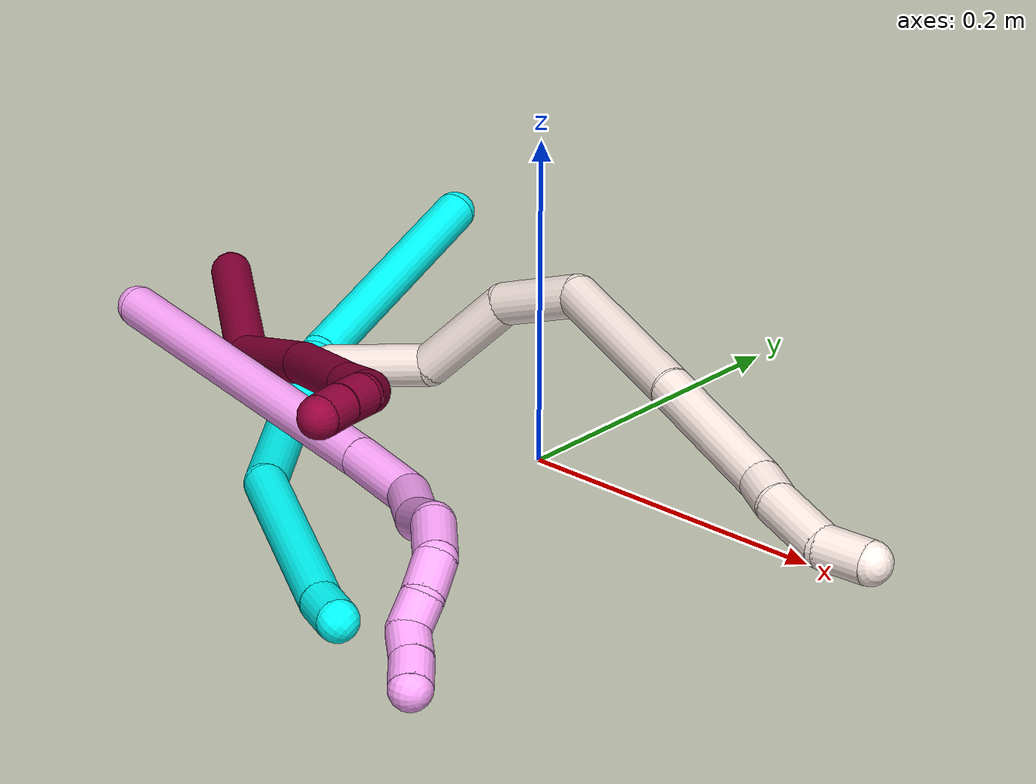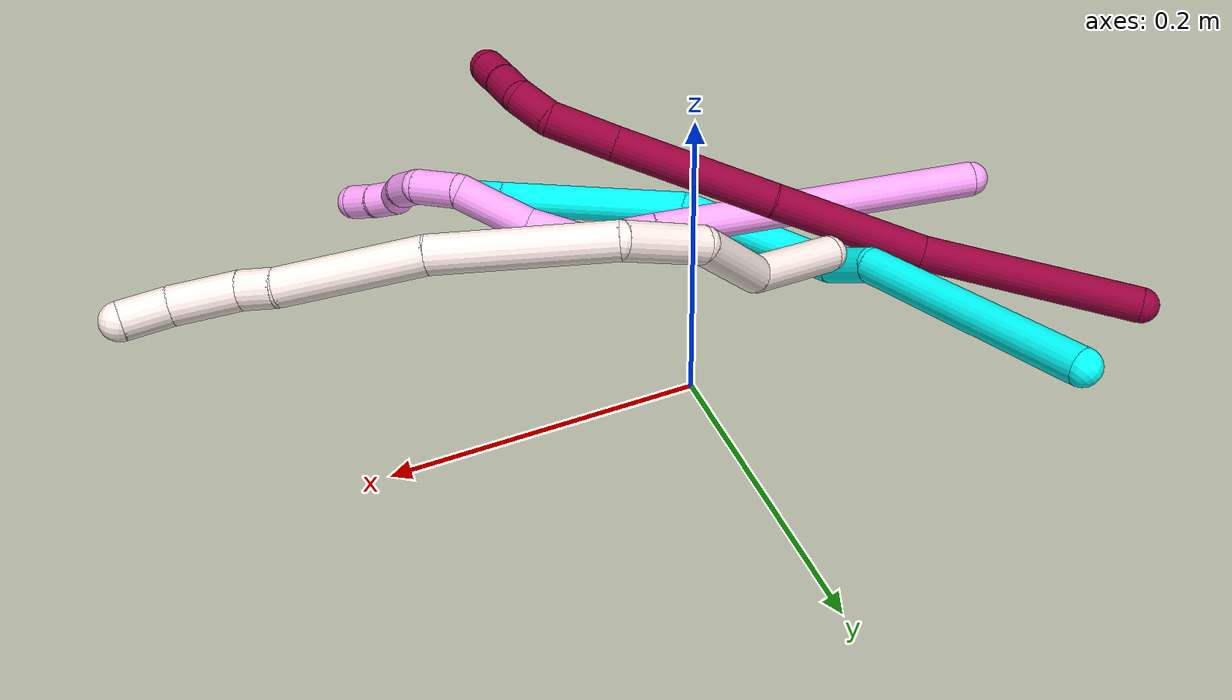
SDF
<sdf version="1.7">
 <world name="default">
  <model name="3">
   <static>0</static>
   <link name="3">
    <collision name="collision-cylinder-e_1_1_4">
     <pose>0.055954 -0.066906 0.006446 1.47476 0.694218 0.634933</pose>
     <geometry><cylinder><radius>0.0125</radius><length>0.174916</length></cylinder></geometry>
     <surface>
      <friction><ode><mu>1.16</mu><mu2>1.16</mu2><slip1>0</slip1><slip2>0</slip2></ode></friction>
      <contact><ode><kp>1e+06</kp><kd>1</kd><max_vel>0</max_vel><min_depth>0.001</min_depth></ode></contact>
     </surface>
    </collision>
    <visual name="visual-cylinder-e_1_1_4">
     <pose>0.055954 -0.066906 0.006446 1.47476 0.694218 0.634933</pose>
     <geometry><cylinder><radius>0.0125</radius><length>0.174916</length></cylinder></geometry>
     <material><ambient>0.003922 1 0.996078 1</ambient></material>
    </visual>
    <collision name="collision-cylinder-e_2_4_5">
     <pose>0.128497 -0.144447 0.019361 1.02422 0.927044 0.547827</pose>
     <geometry><cylinder><radius>0.0125</radius><length>0.041479</length></cylinder></geometry>
     <surface>
      <friction><ode><mu>1.16</mu><mu2>1.16</mu2><slip1>0</slip1><slip2>0</slip2></ode></friction>
      <contact><ode><kp>1e+06</kp><kd>1</kd><max_vel>0</max_vel><min_depth>0.001</min_depth></ode></contact>
     </surface>
    </collision>
    <visual name="visual-cylinder-e_2_4_5">
     <pose>0.128497 -0.144447 0.019361 1.02422 0.927044 0.547827</pose>
     <geometry><cylinder><radius>0.0125</radius><length>0.041479</length></cylinder></geometry>
     <material><ambient>0.003922 1 0.996078 1</ambient></material>
    </visual>
    <collision name="collision-cylinder-e_3_5_6">
     <pose>0.161517 -0.210134 0.040028 1.31843 0.281343 0.218573</pose>
     <geometry><cylinder><radius>0.0125</radius><length>0.11836</length></cylinder></geometry>
     <surface>
      <friction><ode><mu>1.16</mu><mu2>1.16</mu2><slip1>0</slip1><slip2>0</slip2></ode></friction>
      <contact><ode><kp>1e+06</kp><kd>1</kd><max_vel>0</max_vel><min_depth>0.001</min_depth></ode></contact>
     </surface>
    </collision>
    <visual name="visual-cylinder-e_3_5_6">
     <pose>0.161517 -0.210134 0.040028 1.31843 0.281343 0.218573</pose>
     <geometry><cylinder><radius>0.0125</radius><length>0.11836</length></cylinder></geometry>
     <material><ambient>0.003922 1 0.996078 1</ambient></material>
    </visual>
    <collision name="collision-cylinder-e_4_6_7">
     <pose>0.185217 -0.322848 0.092875 0.980281 0.104331 0.055704</pose>
     <geometry><cylinder><radius>0.0125</radius><length>0.139594</length></cylinder></geometry>
     <surface>
      <friction><ode><mu>1.16</mu><mu2>1.16</mu2><slip1>0</slip1><slip2>0</slip2></ode></friction>
      <contact><ode><kp>1e+06</kp><kd>1</kd><max_vel>0</max_vel><min_depth>0.001</min_depth></ode></contact>
     </surface>
    </collision>
    <visual name="visual-cylinder-e_4_6_7">
     <pose>0.185217 -0.322848 0.092875 0.980281 0.104331 0.055704</pose>
     <geometry><cylinder><radius>0.0125</radius><length>0.139594</length></cylinder></geometry>
     <material><ambient>0.003922 1 0.996078 1</ambient></material>
    </visual>
    <collision name="collision-cylinder-e_5_7_2">
     <pose>0.191972 -0.391012 0.13887 0.960545 -0.040082 -0.020883</pose>
     <geometry><cylinder><radius>0.0125</radius><length>0.02565</length></cylinder></geometry>
     <surface>
      <friction><ode><mu>1.16</mu><mu2>1.16</mu2><slip1>0</slip1><slip2>0</slip2></ode></friction>
      <contact><ode><kp>1e+06</kp><kd>1</kd><max_vel>0</max_vel><min_depth>0.001</min_depth></ode></contact>
     </surface>
    </collision>
    <visual name="visual-cylinder-e_5_7_2">
     <pose>0.191972 -0.391012 0.13887 0.960545 -0.040082 -0.020883</pose>
     <geometry><cylinder><radius>0.0125</radius><length>0.02565</length></cylinder></geometry>
     <material><ambient>0.003922 1 0.996078 1</ambient></material>
    </visual>
    <collision name="collision-sphere-2">
     <pose>0.191458 -0.401514 0.146213 0 -0 0</pose>
     <geometry><sphere><radius>0.0125</radius></sphere></geometry>
     <surface>
      <friction><ode><mu>1.16</mu><mu2>1.16</mu2><slip1>0</slip1><slip2>0</slip2></ode></friction>
      <contact><ode><kp>1e+06</kp><kd>1</kd><max_vel>0</max_vel><min_depth>0.001</min_depth></ode></contact>
     </surface>
    </collision>
    <visual name="visual-sphere-2">
     <pose>0.191458 -0.401514 0.146213 0 -0 0</pose>
     <geometry><sphere><radius>0.0125</radius></sphere></geometry>
     <material><ambient>0.003922 1 0.996078 1</ambient></material>
    </visual>
    <collision name="collision-sphere-7">
     <pose>0.192486 -0.38051 0.131526 0 -0 0</pose>
     <geometry><sphere><radius>0.0125</radius></sphere></geometry>
     <surface>
      <friction><ode><mu>1.16</mu><mu2>1.16</mu2><slip1>0</slip1><slip2>0</slip2></ode></friction>
      <contact><ode><kp>1e+06</kp><kd>1</kd><max_vel>0</max_vel><min_depth>0.001</min_depth></ode></contact>
     </surface>
    </collision>
    <visual name="visual-sphere-7">
     <pose>0.192486 -0.38051 0.131526 0 -0 0</pose>
     <geometry><sphere><radius>0.0125</radius></sphere></geometry>
     <material><ambient>0.003922 1 0.996078 1</ambient></material>
    </visual>
    <collision name="collision-sphere-6">
     <pose>0.177948 -0.265186 0.054224 0 -0 0</pose>
     <geometry><sphere><radius>0.0125</radius></sphere></geometry>
     <surface>
      <friction><ode><mu>1.16</mu><mu2>1.16</mu2><slip1>0</slip1><slip2>0</slip2></ode></friction>
      <contact><ode><kp>1e+06</kp><kd>1</kd><max_vel>0</max_vel><min_depth>0.001</min_depth></ode></contact>
     </surface>
    </collision>
    <visual name="visual-sphere-6">
     <pose>0.177948 -0.265186 0.054224 0 -0 0</pose>
     <geometry><sphere><radius>0.0125</radius></sphere></geometry>
     <material><ambient>0.003922 1 0.996078 1</ambient></material>
    </visual>
    <collision name="collision-sphere-5">
     <pose>0.145086 -0.155082 0.025831 0 -0 0</pose>
     <geometry><sphere><radius>0.0125</radius></sphere></geometry>
     <surface>
      <friction><ode><mu>1.16</mu><mu2>1.16</mu2><slip1>0</slip1><slip2>0</slip2></ode></friction>
      <contact><ode><kp>1e+06</kp><kd>1</kd><max_vel>0</max_vel><min_depth>0.001</min_depth></ode></contact>
     </surface>
    </collision>
    <visual name="visual-sphere-5">
     <pose>0.145086 -0.155082 0.025831 0 -0 0</pose>
     <geometry><sphere><radius>0.0125</radius></sphere></geometry>
     <material><ambient>0.003922 1 0.996078 1</ambient></material>
    </visual>
    <collision name="collision-sphere-1">
     <geometry><sphere><radius>0.0125</radius></sphere></geometry>
     <surface>
      <friction><ode><mu>1.16</mu><mu2>1.16</mu2><slip1>0</slip1><slip2>0</slip2></ode></friction>
      <contact><ode><kp>1e+06</kp><kd>1</kd><max_vel>0</max_vel><min_depth>0.001</min_depth></ode></contact>
     </surface>
    </collision>
    <visual name="visual-sphere-1">
     <geometry><sphere><radius>0.0125</radius></sphere></geometry>
     <material><ambient>0.003922 1 0.996078 1</ambient></material>
    </visual>
    <collision name="collision-sphere-4">
     <pose>0.111909 -0.133813 0.012891 0 -0 0</pose>
     <geometry><sphere><radius>0.0125</radius></sphere></geometry>
     <surface>
      <friction><ode><mu>1.16</mu><mu2>1.16</mu2><slip1>0</slip1><slip2>0</slip2></ode></friction>
      <contact><ode><kp>1e+06</kp><kd>1</kd><max_vel>0</max_vel><min_depth>0.001</min_depth></ode></contact>
     </surface>
    </collision>
    <visual name="visual-sphere-4">
     <pose>0.111909 -0.133813 0.012891 0 -0 0</pose>
     <geometry><sphere><radius>0.0125</radius></sphere></geometry>
     <material><ambient>0.003922 1 0.996078 1</ambient></material>
    </visual>
    <inertial>
     <pose>0.130028 -0.195327 0.04639 0 -0 0</pose>
     <mass>0.5</mass>
     <inertia>
      <ixx>0.000917</ixx>
      <ixy>0</ixy>
      <ixz>0</ixz>
      <iyy>0.000607</iyy>
      <iyz>0</iyz>
      <izz>0.000329</izz>
     </inertia>
    </inertial>
   </link>
   <pose>-0.192949 0.137048 0.06048 -2.51482 0.758511 -2.04378</pose>
  </model>
  <model name="4">
   <static>0</static>
   <link name="4">
    <collision name="collision-cylinder-e_1_1_4">
     <pose>0.020136 -0.003711 0.115043 0.032243 0.173184 0.002799</pose>
     <geometry><cylinder><radius>0.0125</radius><length>0.233702</length></cylinder></geometry>
     <surface>
      <friction><ode><mu>1.16</mu><mu2>1.16</mu2><slip1>0</slip1><slip2>0</slip2></ode></friction>
      <contact><ode><kp>1e+06</kp><kd>1</kd><max_vel>0</max_vel><min_depth>0.001</min_depth></ode></contact>
     </surface>
    </collision>
    <visual name="visual-cylinder-e_1_1_4">
     <pose>0.020136 -0.003711 0.115043 0.032243 0.173184 0.002799</pose>
     <geometry><cylinder><radius>0.0125</radius><length>0.233702</length></cylinder></geometry>
     <material><ambient>1 0.65098 0.996078 1</ambient></material>
    </visual>
    <collision name="collision-cylinder-e_2_4_5">
     <pose>0.04503 -0.007578 0.253964 0.00655 0.196729 0.000646</pose>
     <geometry><cylinder><radius>0.0125</radius><length>0.048695</length></cylinder></geometry>
     <surface>
      <friction><ode><mu>1.16</mu><mu2>1.16</mu2><slip1>0</slip1><slip2>0</slip2></ode></friction>
      <contact><ode><kp>1e+06</kp><kd>1</kd><max_vel>0</max_vel><min_depth>0.001</min_depth></ode></contact>
     </surface>
    </collision>
    <visual name="visual-cylinder-e_2_4_5">
     <pose>0.04503 -0.007578 0.253964 0.00655 0.196729 0.000646</pose>
     <geometry><cylinder><radius>0.0125</radius><length>0.048695</length></cylinder></geometry>
     <material><ambient>1 0.65098 0.996078 1</ambient></material>
    </visual>
    <collision name="collision-cylinder-e_3_5_6">
     <pose>0.061805 -0.015498 0.29487 0.42778 0.570772 0.127286</pose>
     <geometry><cylinder><radius>0.0125</radius><length>0.044479</length></cylinder></geometry>
     <surface>
      <friction><ode><mu>1.16</mu><mu2>1.16</mu2><slip1>0</slip1><slip2>0</slip2></ode></friction>
      <contact><ode><kp>1e+06</kp><kd>1</kd><max_vel>0</max_vel><min_depth>0.001</min_depth></ode></contact>
     </surface>
    </collision>
    <visual name="visual-cylinder-e_3_5_6">
     <pose>0.061805 -0.015498 0.29487 0.42778 0.570772 0.127286</pose>
     <geometry><cylinder><radius>0.0125</radius><length>0.044479</length></cylinder></geometry>
     <material><ambient>1 0.65098 0.996078 1</ambient></material>
    </visual>
    <collision name="collision-cylinder-e_4_6_7">
     <pose>0.083475 -0.038479 0.331984 0.648323 0.365872 0.124169</pose>
     <geometry><cylinder><radius>0.0125</radius><length>0.053973</length></cylinder></geometry>
     <surface>
      <friction><ode><mu>1.16</mu><mu2>1.16</mu2><slip1>0</slip1><slip2>0</slip2></ode></friction>
      <contact><ode><kp>1e+06</kp><kd>1</kd><max_vel>0</max_vel><min_depth>0.001</min_depth></ode></contact>
     </surface>
    </collision>
    <visual name="visual-cylinder-e_4_6_7">
     <pose>0.083475 -0.038479 0.331984 0.648323 0.365872 0.124169</pose>
     <geometry><cylinder><radius>0.0125</radius><length>0.053973</length></cylinder></geometry>
     <material><ambient>1 0.65098 0.996078 1</ambient></material>
    </visual>
    <collision name="collision-cylinder-e_5_7_8">
     <pose>0.104719 -0.055655 0.36416 0.160641 0.757807 0.064074</pose>
     <geometry><cylinder><radius>0.0125</radius><length>0.03372</length></cylinder></geometry>
     <surface>
      <friction><ode><mu>1.16</mu><mu2>1.16</mu2><slip1>0</slip1><slip2>0</slip2></ode></friction>
      <contact><ode><kp>1e+06</kp><kd>1</kd><max_vel>0</max_vel><min_depth>0.001</min_depth></ode></contact>
     </surface>
    </collision>
    <visual name="visual-cylinder-e_5_7_8">
     <pose>0.104719 -0.055655 0.36416 0.160641 0.757807 0.064074</pose>
     <geometry><cylinder><radius>0.0125</radius><length>0.03372</length></cylinder></geometry>
     <material><ambient>1 0.65098 0.996078 1</ambient></material>
    </visual>
    <collision name="collision-cylinder-e_6_8_9">
     <pose>0.127123 -0.05481 0.380546 -0.578097 1.12785 -0.371799</pose>
     <geometry><cylinder><radius>0.0125</radius><length>0.023942</length></cylinder></geometry>
     <surface>
      <friction><ode><mu>1.16</mu><mu2>1.16</mu2><slip1>0</slip1><slip2>0</slip2></ode></friction>
      <contact><ode><kp>1e+06</kp><kd>1</kd><max_vel>0</max_vel><min_depth>0.001</min_depth></ode></contact>
     </surface>
    </collision>
    <visual name="visual-cylinder-e_6_8_9">
     <pose>0.127123 -0.05481 0.380546 -0.578097 1.12785 -0.371799</pose>
     <geometry><cylinder><radius>0.0125</radius><length>0.023942</length></cylinder></geometry>
     <material><ambient>1 0.65098 0.996078 1</ambient></material>
    </visual>
    <collision name="collision-cylinder-e_7_9_10">
     <pose>0.146938 -0.047611 0.386292 -1.25236 1.09584 -0.831325</pose>
     <geometry><cylinder><radius>0.0125</radius><length>0.020239</length></cylinder></geometry>
     <surface>
      <friction><ode><mu>1.16</mu><mu2>1.16</mu2><slip1>0</slip1><slip2>0</slip2></ode></friction>
      <contact><ode><kp>1e+06</kp><kd>1</kd><max_vel>0</max_vel><min_depth>0.001</min_depth></ode></contact>
     </surface>
    </collision>
    <visual name="visual-cylinder-e_7_9_10">
     <pose>0.146938 -0.047611 0.386292 -1.25236 1.09584 -0.831325</pose>
     <geometry><cylinder><radius>0.0125</radius><length>0.020239</length></cylinder></geometry>
     <material><ambient>1 0.65098 0.996078 1</ambient></material>
    </visual>
    <collision name="collision-cylinder-e_8_10_11">
     <pose>0.162855 -0.042044 0.395266 -0.154521 0.737325 -0.059797</pose>
     <geometry><cylinder><radius>0.0125</radius><length>0.020577</length></cylinder></geometry>
     <surface>
      <friction><ode><mu>1.16</mu><mu2>1.16</mu2><slip1>0</slip1><slip2>0</slip2></ode></friction>
      <contact><ode><kp>1e+06</kp><kd>1</kd><max_vel>0</max_vel><min_depth>0.001</min_depth></ode></contact>
     </surface>
    </collision>
    <visual name="visual-cylinder-e_8_10_11">
     <pose>0.162855 -0.042044 0.395266 -0.154521 0.737325 -0.059797</pose>
     <geometry><cylinder><radius>0.0125</radius><length>0.020577</length></cylinder></geometry>
     <material><ambient>1 0.65098 0.996078 1</ambient></material>
    </visual>
    <collision name="collision-cylinder-e_9_11_2">
     <pose>0.177646 -0.040144 0.409447 -0.108878 0.866173 -0.05038</pose>
     <geometry><cylinder><radius>0.0125</radius><length>0.020672</length></cylinder></geometry>
     <surface>
      <friction><ode><mu>1.16</mu><mu2>1.16</mu2><slip1>0</slip1><slip2>0</slip2></ode></friction>
      <contact><ode><kp>1e+06</kp><kd>1</kd><max_vel>0</max_vel><min_depth>0.001</min_depth></ode></contact>
     </surface>
    </collision>
    <visual name="visual-cylinder-e_9_11_2">
     <pose>0.177646 -0.040144 0.409447 -0.108878 0.866173 -0.05038</pose>
     <geometry><cylinder><radius>0.0125</radius><length>0.020672</length></cylinder></geometry>
     <material><ambient>1 0.65098 0.996078 1</ambient></material>
    </visual>
    <collision name="collision-sphere-2">
     <pose>0.185521 -0.039417 0.416102 0 -0 0</pose>
     <geometry><sphere><radius>0.0125</radius></sphere></geometry>
     <surface>
      <friction><ode><mu>1.16</mu><mu2>1.16</mu2><slip1>0</slip1><slip2>0</slip2></ode></friction>
      <contact><ode><kp>1e+06</kp><kd>1</kd><max_vel>0</max_vel><min_depth>0.001</min_depth></ode></contact>
     </surface>
    </collision>
    <visual name="visual-sphere-2">
     <pose>0.185521 -0.039417 0.416102 0 -0 0</pose>
     <geometry><sphere><radius>0.0125</radius></sphere></geometry>
     <material><ambient>1 0.65098 0.996078 1</ambient></material>
    </visual>
    <collision name="collision-sphere-11">
     <pose>0.169772 -0.040872 0.402791 0 -0 0</pose>
     <geometry><sphere><radius>0.0125</radius></sphere></geometry>
     <surface>
      <friction><ode><mu>1.16</mu><mu2>1.16</mu2><slip1>0</slip1><slip2>0</slip2></ode></friction>
      <contact><ode><kp>1e+06</kp><kd>1</kd><max_vel>0</max_vel><min_depth>0.001</min_depth></ode></contact>
     </surface>
    </collision>
    <visual name="visual-sphere-11">
     <pose>0.169772 -0.040872 0.402791 0 -0 0</pose>
     <geometry><sphere><radius>0.0125</radius></sphere></geometry>
     <material><ambient>1 0.65098 0.996078 1</ambient></material>
    </visual>
    <collision name="collision-sphere-10">
     <pose>0.155938 -0.043216 0.387741 0 -0 0</pose>
     <geometry><sphere><radius>0.0125</radius></sphere></geometry>
     <surface>
      <friction><ode><mu>1.16</mu><mu2>1.16</mu2><slip1>0</slip1><slip2>0</slip2></ode></friction>
      <contact><ode><kp>1e+06</kp><kd>1</kd><max_vel>0</max_vel><min_depth>0.001</min_depth></ode></contact>
     </surface>
    </collision>
    <visual name="visual-sphere-10">
     <pose>0.155938 -0.043216 0.387741 0 -0 0</pose>
     <geometry><sphere><radius>0.0125</radius></sphere></geometry>
     <material><ambient>1 0.65098 0.996078 1</ambient></material>
    </visual>
    <collision name="collision-sphere-9">
     <pose>0.137939 -0.052006 0.384843 0 -0 0</pose>
     <geometry><sphere><radius>0.0125</radius></sphere></geometry>
     <surface>
      <friction><ode><mu>1.16</mu><mu2>1.16</mu2><slip1>0</slip1><slip2>0</slip2></ode></friction>
      <contact><ode><kp>1e+06</kp><kd>1</kd><max_vel>0</max_vel><min_depth>0.001</min_depth></ode></contact>
     </surface>
    </collision>
    <visual name="visual-sphere-9">
     <pose>0.137939 -0.052006 0.384843 0 -0 0</pose>
     <geometry><sphere><radius>0.0125</radius></sphere></geometry>
     <material><ambient>1 0.65098 0.996078 1</ambient></material>
    </visual>
    <collision name="collision-sphere-4">
     <pose>0.040271 -0.007421 0.230087 0 -0 0</pose>
     <geometry><sphere><radius>0.0125</radius></sphere></geometry>
     <surface>
      <friction><ode><mu>1.16</mu><mu2>1.16</mu2><slip1>0</slip1><slip2>0</slip2></ode></friction>
      <contact><ode><kp>1e+06</kp><kd>1</kd><max_vel>0</max_vel><min_depth>0.001</min_depth></ode></contact>
     </surface>
    </collision>
    <visual name="visual-sphere-4">
     <pose>0.040271 -0.007421 0.230087 0 -0 0</pose>
     <geometry><sphere><radius>0.0125</radius></sphere></geometry>
     <material><ambient>1 0.65098 0.996078 1</ambient></material>
    </visual>
    <collision name="collision-sphere-1">
     <geometry><sphere><radius>0.0125</radius></sphere></geometry>
     <surface>
      <friction><ode><mu>1.16</mu><mu2>1.16</mu2><slip1>0</slip1><slip2>0</slip2></ode></friction>
      <contact><ode><kp>1e+06</kp><kd>1</kd><max_vel>0</max_vel><min_depth>0.001</min_depth></ode></contact>
     </surface>
    </collision>
    <visual name="visual-sphere-1">
     <geometry><sphere><radius>0.0125</radius></sphere></geometry>
     <material><ambient>1 0.65098 0.996078 1</ambient></material>
    </visual>
    <collision name="collision-sphere-8">
     <pose>0.116307 -0.057613 0.376249 0 -0 0</pose>
     <geometry><sphere><radius>0.0125</radius></sphere></geometry>
     <surface>
      <friction><ode><mu>1.16</mu><mu2>1.16</mu2><slip1>0</slip1><slip2>0</slip2></ode></friction>
      <contact><ode><kp>1e+06</kp><kd>1</kd><max_vel>0</max_vel><min_depth>0.001</min_depth></ode></contact>
     </surface>
    </collision>
    <visual name="visual-sphere-8">
     <pose>0.116307 -0.057613 0.376249 0 -0 0</pose>
     <geometry><sphere><radius>0.0125</radius></sphere></geometry>
     <material><ambient>1 0.65098 0.996078 1</ambient></material>
    </visual>
    <collision name="collision-sphere-5">
     <pose>0.04979 -0.007734 0.277842 0 -0 0</pose>
     <geometry><sphere><radius>0.0125</radius></sphere></geometry>
     <surface>
      <friction><ode><mu>1.16</mu><mu2>1.16</mu2><slip1>0</slip1><slip2>0</slip2></ode></friction>
      <contact><ode><kp>1e+06</kp><kd>1</kd><max_vel>0</max_vel><min_depth>0.001</min_depth></ode></contact>
     </surface>
    </collision>
    <visual name="visual-sphere-5">
     <pose>0.04979 -0.007734 0.277842 0 -0 0</pose>
     <geometry><sphere><radius>0.0125</radius></sphere></geometry>
     <material><ambient>1 0.65098 0.996078 1</ambient></material>
    </visual>
    <collision name="collision-sphere-6">
     <pose>0.073821 -0.023261 0.311897 0 -0 0</pose>
     <geometry><sphere><radius>0.0125</radius></sphere></geometry>
     <surface>
      <friction><ode><mu>1.16</mu><mu2>1.16</mu2><slip1>0</slip1><slip2>0</slip2></ode></friction>
      <contact><ode><kp>1e+06</kp><kd>1</kd><max_vel>0</max_vel><min_depth>0.001</min_depth></ode></contact>
     </surface>
    </collision>
    <visual name="visual-sphere-6">
     <pose>0.073821 -0.023261 0.311897 0 -0 0</pose>
     <geometry><sphere><radius>0.0125</radius></sphere></geometry>
     <material><ambient>1 0.65098 0.996078 1</ambient></material>
    </visual>
    <collision name="collision-sphere-7">
     <pose>0.09313 -0.053696 0.352072 0 -0 0</pose>
     <geometry><sphere><radius>0.0125</radius></sphere></geometry>
     <surface>
      <friction><ode><mu>1.16</mu><mu2>1.16</mu2><slip1>0</slip1><slip2>0</slip2></ode></friction>
      <contact><ode><kp>1e+06</kp><kd>1</kd><max_vel>0</max_vel><min_depth>0.001</min_depth></ode></contact>
     </surface>
    </collision>
    <visual name="visual-sphere-7">
     <pose>0.09313 -0.053696 0.352072 0 -0 0</pose>
     <geometry><sphere><radius>0.0125</radius></sphere></geometry>
     <material><ambient>1 0.65098 0.996078 1</ambient></material>
    </visual>
    <inertial>
     <pose>0.06145 -0.0197 0.232186 0 -0 0</pose>
     <mass>0.5</mass>
     <inertia>
      <ixx>0.001116</ixx>
      <ixy>0</ixy>
      <ixz>0</ixz>
      <iyy>0.001117</iyy>
      <iyz>0</iyz>
      <izz>-0.000128</izz>
     </inertia>
    </inertial>
   </link>
   <pose>-0.256149 -0.075274 0.046157 -1.58874 0.34877 -1.60513</pose>
  </model>
  <model name="8">
   <static>0</static>
   <link name="8">
    <collision name="collision-cylinder-e_1_1_4">
     <pose>0.023121 -0.032764 -0.065008 2.67475 0.307531 1.15539</pose>
     <geometry><cylinder><radius>0.0125</radius><length>0.152763</length></cylinder></geometry>
     <surface>
      <friction><ode><mu>1.16</mu><mu2>1.16</mu2><slip1>0</slip1><slip2>0</slip2></ode></friction>
      <contact><ode><kp>1e+06</kp><kd>1</kd><max_vel>0</max_vel><min_depth>0.001</min_depth></ode></contact>
     </surface>
    </collision>
    <visual name="visual-cylinder-e_1_1_4">
     <pose>0.023121 -0.032764 -0.065008 2.67475 0.307531 1.15539</pose>
     <geometry><cylinder><radius>0.0125</radius><length>0.152763</length></cylinder></geometry>
     <material><ambient>0.584314 0 0.227451 1</ambient></material>
    </visual>
    <collision name="collision-cylinder-e_2_4_5">
     <pose>0.056281 -0.107205 -0.16766 2.3054 0.176891 0.394007</pose>
     <geometry><cylinder><radius>0.0125</radius><length>0.114101</length></cylinder></geometry>
     <surface>
      <friction><ode><mu>1.16</mu><mu2>1.16</mu2><slip1>0</slip1><slip2>0</slip2></ode></friction>
      <contact><ode><kp>1e+06</kp><kd>1</kd><max_vel>0</max_vel><min_depth>0.001</min_depth></ode></contact>
     </surface>
    </collision>
    <visual name="visual-cylinder-e_2_4_5">
     <pose>0.056281 -0.107205 -0.16766 2.3054 0.176891 0.394007</pose>
     <geometry><cylinder><radius>0.0125</radius><length>0.114101</length></cylinder></geometry>
     <material><ambient>0.584314 0 0.227451 1</ambient></material>
    </visual>
    <collision name="collision-cylinder-e_3_5_6">
     <pose>0.076786 -0.187101 -0.24808 2.41239 0.18046 0.465519</pose>
     <geometry><cylinder><radius>0.0125</radius><length>0.116621</length></cylinder></geometry>
     <surface>
      <friction><ode><mu>1.16</mu><mu2>1.16</mu2><slip1>0</slip1><slip2>0</slip2></ode></friction>
      <contact><ode><kp>1e+06</kp><kd>1</kd><max_vel>0</max_vel><min_depth>0.001</min_depth></ode></contact>
     </surface>
    </collision>
    <visual name="visual-cylinder-e_3_5_6">
     <pose>0.076786 -0.187101 -0.24808 2.41239 0.18046 0.465519</pose>
     <geometry><cylinder><radius>0.0125</radius><length>0.116621</length></cylinder></geometry>
     <material><ambient>0.584314 0 0.227451 1</ambient></material>
    </visual>
    <collision name="collision-cylinder-e_4_6_7">
     <pose>0.091106 -0.241457 -0.308257 2.39388 0.160986 0.405594</pose>
     <geometry><cylinder><radius>0.0125</radius><length>0.048083</length></cylinder></geometry>
     <surface>
      <friction><ode><mu>1.16</mu><mu2>1.16</mu2><slip1>0</slip1><slip2>0</slip2></ode></friction>
      <contact><ode><kp>1e+06</kp><kd>1</kd><max_vel>0</max_vel><min_depth>0.001</min_depth></ode></contact>
     </surface>
    </collision>
    <visual name="visual-cylinder-e_4_6_7">
     <pose>0.091106 -0.241457 -0.308257 2.39388 0.160986 0.405594</pose>
     <geometry><cylinder><radius>0.0125</radius><length>0.048083</length></cylinder></geometry>
     <material><ambient>0.584314 0 0.227451 1</ambient></material>
    </visual>
    <collision name="collision-cylinder-e_5_7_8">
     <pose>0.093954 -0.263352 -0.337726 2.69636 -0.07499 -0.328441</pose>
     <geometry><cylinder><radius>0.0125</radius><length>0.026821</length></cylinder></geometry>
     <surface>
      <friction><ode><mu>1.16</mu><mu2>1.16</mu2><slip1>0</slip1><slip2>0</slip2></ode></friction>
      <contact><ode><kp>1e+06</kp><kd>1</kd><max_vel>0</max_vel><min_depth>0.001</min_depth></ode></contact>
     </surface>
    </collision>
    <visual name="visual-cylinder-e_5_7_8">
     <pose>0.093954 -0.263352 -0.337726 2.69636 -0.07499 -0.328441</pose>
     <geometry><cylinder><radius>0.0125</radius><length>0.026821</length></cylinder></geometry>
     <material><ambient>0.584314 0 0.227451 1</ambient></material>
    </visual>
    <collision name="collision-cylinder-e_6_8_9">
     <pose>0.091663 -0.269138 -0.360481 3.13904 -0.119875 -3.099</pose>
     <geometry><cylinder><radius>0.0125</radius><length>0.021527</length></cylinder></geometry>
     <surface>
      <friction><ode><mu>1.16</mu><mu2>1.16</mu2><slip1>0</slip1><slip2>0</slip2></ode></friction>
      <contact><ode><kp>1e+06</kp><kd>1</kd><max_vel>0</max_vel><min_depth>0.001</min_depth></ode></contact>
     </surface>
    </collision>
    <visual name="visual-cylinder-e_6_8_9">
     <pose>0.091663 -0.269138 -0.360481 3.13904 -0.119875 -3.099</pose>
     <geometry><cylinder><radius>0.0125</radius><length>0.021527</length></cylinder></geometry>
     <material><ambient>0.584314 0 0.227451 1</ambient></material>
    </visual>
    <collision name="collision-cylinder-e_7_9_2">
     <pose>0.089453 -0.268442 -0.381141 -3.06912 -0.092 1.80743</pose>
     <geometry><cylinder><radius>0.0125</radius><length>0.020085</length></cylinder></geometry>
     <surface>
      <friction><ode><mu>1.16</mu><mu2>1.16</mu2><slip1>0</slip1><slip2>0</slip2></ode></friction>
      <contact><ode><kp>1e+06</kp><kd>1</kd><max_vel>0</max_vel><min_depth>0.001</min_depth></ode></contact>
     </surface>
    </collision>
    <visual name="visual-cylinder-e_7_9_2">
     <pose>0.089453 -0.268442 -0.381141 -3.06912 -0.092 1.80743</pose>
     <geometry><cylinder><radius>0.0125</radius><length>0.020085</length></cylinder></geometry>
     <material><ambient>0.584314 0 0.227451 1</ambient></material>
    </visual>
    <collision name="collision-sphere-2">
     <pose>0.08853 -0.267717 -0.391115 0 -0 0</pose>
     <geometry><sphere><radius>0.0125</radius></sphere></geometry>
     <surface>
      <friction><ode><mu>1.16</mu><mu2>1.16</mu2><slip1>0</slip1><slip2>0</slip2></ode></friction>
      <contact><ode><kp>1e+06</kp><kd>1</kd><max_vel>0</max_vel><min_depth>0.001</min_depth></ode></contact>
     </surface>
    </collision>
    <visual name="visual-sphere-2">
     <pose>0.08853 -0.267717 -0.391115 0 -0 0</pose>
     <geometry><sphere><radius>0.0125</radius></sphere></geometry>
     <material><ambient>0.584314 0 0.227451 1</ambient></material>
    </visual>
    <collision name="collision-sphere-9">
     <pose>0.090375 -0.269166 -0.371167 0 -0 0</pose>
     <geometry><sphere><radius>0.0125</radius></sphere></geometry>
     <surface>
      <friction><ode><mu>1.16</mu><mu2>1.16</mu2><slip1>0</slip1><slip2>0</slip2></ode></friction>
      <contact><ode><kp>1e+06</kp><kd>1</kd><max_vel>0</max_vel><min_depth>0.001</min_depth></ode></contact>
     </surface>
    </collision>
    <visual name="visual-sphere-9">
     <pose>0.090375 -0.269166 -0.371167 0 -0 0</pose>
     <geometry><sphere><radius>0.0125</radius></sphere></geometry>
     <material><ambient>0.584314 0 0.227451 1</ambient></material>
    </visual>
    <collision name="collision-sphere-4">
     <pose>0.046242 -0.065529 -0.130016 0 -0 0</pose>
     <geometry><sphere><radius>0.0125</radius></sphere></geometry>
     <surface>
      <friction><ode><mu>1.16</mu><mu2>1.16</mu2><slip1>0</slip1><slip2>0</slip2></ode></friction>
      <contact><ode><kp>1e+06</kp><kd>1</kd><max_vel>0</max_vel><min_depth>0.001</min_depth></ode></contact>
     </surface>
    </collision>
    <visual name="visual-sphere-4">
     <pose>0.046242 -0.065529 -0.130016 0 -0 0</pose>
     <geometry><sphere><radius>0.0125</radius></sphere></geometry>
     <material><ambient>0.584314 0 0.227451 1</ambient></material>
    </visual>
    <collision name="collision-sphere-1">
     <geometry><sphere><radius>0.0125</radius></sphere></geometry>
     <surface>
      <friction><ode><mu>1.16</mu><mu2>1.16</mu2><slip1>0</slip1><slip2>0</slip2></ode></friction>
      <contact><ode><kp>1e+06</kp><kd>1</kd><max_vel>0</max_vel><min_depth>0.001</min_depth></ode></contact>
     </surface>
    </collision>
    <visual name="visual-sphere-1">
     <geometry><sphere><radius>0.0125</radius></sphere></geometry>
     <material><ambient>0.584314 0 0.227451 1</ambient></material>
    </visual>
    <collision name="collision-sphere-8">
     <pose>0.09295 -0.269111 -0.349795 0 -0 0</pose>
     <geometry><sphere><radius>0.0125</radius></sphere></geometry>
     <surface>
      <friction><ode><mu>1.16</mu><mu2>1.16</mu2><slip1>0</slip1><slip2>0</slip2></ode></friction>
      <contact><ode><kp>1e+06</kp><kd>1</kd><max_vel>0</max_vel><min_depth>0.001</min_depth></ode></contact>
     </surface>
    </collision>
    <visual name="visual-sphere-8">
     <pose>0.09295 -0.269111 -0.349795 0 -0 0</pose>
     <geometry><sphere><radius>0.0125</radius></sphere></geometry>
     <material><ambient>0.584314 0 0.227451 1</ambient></material>
    </visual>
    <collision name="collision-sphere-5">
     <pose>0.066321 -0.148881 -0.205304 0 -0 0</pose>
     <geometry><sphere><radius>0.0125</radius></sphere></geometry>
     <surface>
      <friction><ode><mu>1.16</mu><mu2>1.16</mu2><slip1>0</slip1><slip2>0</slip2></ode></friction>
      <contact><ode><kp>1e+06</kp><kd>1</kd><max_vel>0</max_vel><min_depth>0.001</min_depth></ode></contact>
     </surface>
    </collision>
    <visual name="visual-sphere-5">
     <pose>0.066321 -0.148881 -0.205304 0 -0 0</pose>
     <geometry><sphere><radius>0.0125</radius></sphere></geometry>
     <material><ambient>0.584314 0 0.227451 1</ambient></material>
    </visual>
    <collision name="collision-sphere-6">
     <pose>0.087252 -0.225321 -0.290856 0 -0 0</pose>
     <geometry><sphere><radius>0.0125</radius></sphere></geometry>
     <surface>
      <friction><ode><mu>1.16</mu><mu2>1.16</mu2><slip1>0</slip1><slip2>0</slip2></ode></friction>
      <contact><ode><kp>1e+06</kp><kd>1</kd><max_vel>0</max_vel><min_depth>0.001</min_depth></ode></contact>
     </surface>
    </collision>
    <visual name="visual-sphere-6">
     <pose>0.087252 -0.225321 -0.290856 0 -0 0</pose>
     <geometry><sphere><radius>0.0125</radius></sphere></geometry>
     <material><ambient>0.584314 0 0.227451 1</ambient></material>
    </visual>
    <collision name="collision-sphere-7">
     <pose>0.094959 -0.257593 -0.325657 0 -0 0</pose>
     <geometry><sphere><radius>0.0125</radius></sphere></geometry>
     <surface>
      <friction><ode><mu>1.16</mu><mu2>1.16</mu2><slip1>0</slip1><slip2>0</slip2></ode></friction>
      <contact><ode><kp>1e+06</kp><kd>1</kd><max_vel>0</max_vel><min_depth>0.001</min_depth></ode></contact>
     </surface>
    </collision>
    <visual name="visual-sphere-7">
     <pose>0.094959 -0.257593 -0.325657 0 -0 0</pose>
     <geometry><sphere><radius>0.0125</radius></sphere></geometry>
     <material><ambient>0.584314 0 0.227451 1</ambient></material>
    </visual>
    <inertial>
     <pose>0.059158 -0.137832 -0.194575 0 -0 0</pose>
     <mass>0.5</mass>
     <inertia>
      <ixx>0.000749</ixx>
      <ixy>0</ixy>
      <ixz>0</ixz>
      <iyy>0.000122</iyy>
      <iyz>0</iyz>
      <izz>0.000151</izz>
     </inertia>
    </inertial>
   </link>
   <pose>-0.312387 0.058883 0.00991 -1.60408 0.864625 0.273614</pose>
  </model>
  <model name="11">
   <static>0</static>
   <link name="11">
    <collision name="collision-cylinder-e_1_1_4">
     <pose>0.02265 -0.00524 0.025842 0.200047 0.709707 0.074339</pose>
     <geometry><cylinder><radius>0.0125</radius><length>0.06952</length></cylinder></geometry>
     <surface>
      <friction><ode><mu>1.16</mu><mu2>1.16</mu2><slip1>0</slip1><slip2>0</slip2></ode></friction>
      <contact><ode><kp>1e+06</kp><kd>1</kd><max_vel>0</max_vel><min_depth>0.001</min_depth></ode></contact>
     </surface>
    </collision>
    <visual name="visual-cylinder-e_1_1_4">
     <pose>0.02265 -0.00524 0.025842 0.200047 0.709707 0.074339</pose>
     <geometry><cylinder><radius>0.0125</radius><length>0.06952</length></cylinder></geometry>
     <material><ambient>1 0.933333 0.909804 1</ambient></material>
    </visual>
    <collision name="collision-cylinder-e_2_4_5">
     <pose>0.06811 0.002844 0.072388 -0.57179 0.747231 -0.229459</pose>
     <geometry><cylinder><radius>0.0125</radius><length>0.067126</length></cylinder></geometry>
     <surface>
      <friction><ode><mu>1.16</mu><mu2>1.16</mu2><slip1>0</slip1><slip2>0</slip2></ode></friction>
      <contact><ode><kp>1e+06</kp><kd>1</kd><max_vel>0</max_vel><min_depth>0.001</min_depth></ode></contact>
     </surface>
    </collision>
    <visual name="visual-cylinder-e_2_4_5">
     <pose>0.06811 0.002844 0.072388 -0.57179 0.747231 -0.229459</pose>
     <geometry><cylinder><radius>0.0125</radius><length>0.067126</length></cylinder></geometry>
     <material><ambient>1 0.933333 0.909804 1</ambient></material>
    </visual>
    <collision name="collision-cylinder-e_3_5_6">
     <pose>0.105483 0.016968 0.118317 -0.031715 0.523376 -0.008495</pose>
     <geometry><cylinder><radius>0.0125</radius><length>0.058276</length></cylinder></geometry>
     <surface>
      <friction><ode><mu>1.16</mu><mu2>1.16</mu2><slip1>0</slip1><slip2>0</slip2></ode></friction>
      <contact><ode><kp>1e+06</kp><kd>1</kd><max_vel>0</max_vel><min_depth>0.001</min_depth></ode></contact>
     </surface>
    </collision>
    <visual name="visual-cylinder-e_3_5_6">
     <pose>0.105483 0.016968 0.118317 -0.031715 0.523376 -0.008495</pose>
     <geometry><cylinder><radius>0.0125</radius><length>0.058276</length></cylinder></geometry>
     <material><ambient>1 0.933333 0.909804 1</ambient></material>
    </visual>
    <collision name="collision-cylinder-e_4_6_7">
     <pose>0.120013 0.001307 0.199436 0.286411 -0.000577 -8.3e-05</pose>
     <geometry><cylinder><radius>0.0125</radius><length>0.116536</length></cylinder></geometry>
     <surface>
      <friction><ode><mu>1.16</mu><mu2>1.16</mu2><slip1>0</slip1><slip2>0</slip2></ode></friction>
      <contact><ode><kp>1e+06</kp><kd>1</kd><max_vel>0</max_vel><min_depth>0.001</min_depth></ode></contact>
     </surface>
    </collision>
    <visual name="visual-cylinder-e_4_6_7">
     <pose>0.120013 0.001307 0.199436 0.286411 -0.000577 -8.3e-05</pose>
     <geometry><cylinder><radius>0.0125</radius><length>0.116536</length></cylinder></geometry>
     <material><ambient>1 0.933333 0.909804 1</ambient></material>
    </visual>
    <collision name="collision-cylinder-e_5_7_8">
     <pose>0.12185 -0.034067 0.297606 0.420665 0.040383 0.008622</pose>
     <geometry><cylinder><radius>0.0125</radius><length>0.092702</length></cylinder></geometry>
     <surface>
      <friction><ode><mu>1.16</mu><mu2>1.16</mu2><slip1>0</slip1><slip2>0</slip2></ode></friction>
      <contact><ode><kp>1e+06</kp><kd>1</kd><max_vel>0</max_vel><min_depth>0.001</min_depth></ode></contact>
     </surface>
    </collision>
    <visual name="visual-cylinder-e_5_7_8">
     <pose>0.12185 -0.034067 0.297606 0.420665 0.040383 0.008622</pose>
     <geometry><cylinder><radius>0.0125</radius><length>0.092702</length></cylinder></geometry>
     <material><ambient>1 0.933333 0.909804 1</ambient></material>
    </visual>
    <collision name="collision-cylinder-e_6_8_9">
     <pose>0.122493 -0.056449 0.350366 0.319567 -0.110856 -0.017883</pose>
     <geometry><cylinder><radius>0.0125</radius><length>0.022222</length></cylinder></geometry>
     <surface>
      <friction><ode><mu>1.16</mu><mu2>1.16</mu2><slip1>0</slip1><slip2>0</slip2></ode></friction>
      <contact><ode><kp>1e+06</kp><kd>1</kd><max_vel>0</max_vel><min_depth>0.001</min_depth></ode></contact>
     </surface>
    </collision>
    <visual name="visual-cylinder-e_6_8_9">
     <pose>0.122493 -0.056449 0.350366 0.319567 -0.110856 -0.017883</pose>
     <geometry><cylinder><radius>0.0125</radius><length>0.022222</length></cylinder></geometry>
     <material><ambient>1 0.933333 0.909804 1</ambient></material>
    </visual>
    <collision name="collision-cylinder-e_7_9_10">
     <pose>0.122948 -0.068775 0.380842 0.417015 0.076887 0.016276</pose>
     <geometry><cylinder><radius>0.0125</radius><length>0.043862</length></cylinder></geometry>
     <surface>
      <friction><ode><mu>1.16</mu><mu2>1.16</mu2><slip1>0</slip1><slip2>0</slip2></ode></friction>
      <contact><ode><kp>1e+06</kp><kd>1</kd><max_vel>0</max_vel><min_depth>0.001</min_depth></ode></contact>
     </surface>
    </collision>
    <visual name="visual-cylinder-e_7_9_10">
     <pose>0.122948 -0.068775 0.380842 0.417015 0.076887 0.016276</pose>
     <geometry><cylinder><radius>0.0125</radius><length>0.043862</length></cylinder></geometry>
     <material><ambient>1 0.933333 0.909804 1</ambient></material>
    </visual>
    <collision name="collision-cylinder-e_8_10_2">
     <pose>0.131276 -0.082664 0.413158 0.387638 0.462864 0.092444</pose>
     <geometry><cylinder><radius>0.0125</radius><length>0.029756</length></cylinder></geometry>
     <surface>
      <friction><ode><mu>1.16</mu><mu2>1.16</mu2><slip1>0</slip1><slip2>0</slip2></ode></friction>
      <contact><ode><kp>1e+06</kp><kd>1</kd><max_vel>0</max_vel><min_depth>0.001</min_depth></ode></contact>
     </surface>
    </collision>
    <visual name="visual-cylinder-e_8_10_2">
     <pose>0.131276 -0.082664 0.413158 0.387638 0.462864 0.092444</pose>
     <geometry><cylinder><radius>0.0125</radius><length>0.029756</length></cylinder></geometry>
     <material><ambient>1 0.933333 0.909804 1</ambient></material>
    </visual>
    <collision name="collision-sphere-2">
     <pose>0.137919 -0.087696 0.425483 0 -0 0</pose>
     <geometry><sphere><radius>0.0125</radius></sphere></geometry>
     <surface>
      <friction><ode><mu>1.16</mu><mu2>1.16</mu2><slip1>0</slip1><slip2>0</slip2></ode></friction>
      <contact><ode><kp>1e+06</kp><kd>1</kd><max_vel>0</max_vel><min_depth>0.001</min_depth></ode></contact>
     </surface>
    </collision>
    <visual name="visual-sphere-2">
     <pose>0.137919 -0.087696 0.425483 0 -0 0</pose>
     <geometry><sphere><radius>0.0125</radius></sphere></geometry>
     <material><ambient>1 0.933333 0.909804 1</ambient></material>
    </visual>
    <collision name="collision-sphere-10">
     <pose>0.124632 -0.077632 0.400834 0 -0 0</pose>
     <geometry><sphere><radius>0.0125</radius></sphere></geometry>
     <surface>
      <friction><ode><mu>1.16</mu><mu2>1.16</mu2><slip1>0</slip1><slip2>0</slip2></ode></friction>
      <contact><ode><kp>1e+06</kp><kd>1</kd><max_vel>0</max_vel><min_depth>0.001</min_depth></ode></contact>
     </surface>
    </collision>
    <visual name="visual-sphere-10">
     <pose>0.124632 -0.077632 0.400834 0 -0 0</pose>
     <geometry><sphere><radius>0.0125</radius></sphere></geometry>
     <material><ambient>1 0.933333 0.909804 1</ambient></material>
    </visual>
    <collision name="collision-sphere-9">
     <pose>0.121263 -0.059919 0.360849 0 -0 0</pose>
     <geometry><sphere><radius>0.0125</radius></sphere></geometry>
     <surface>
      <friction><ode><mu>1.16</mu><mu2>1.16</mu2><slip1>0</slip1><slip2>0</slip2></ode></friction>
      <contact><ode><kp>1e+06</kp><kd>1</kd><max_vel>0</max_vel><min_depth>0.001</min_depth></ode></contact>
     </surface>
    </collision>
    <visual name="visual-sphere-9">
     <pose>0.121263 -0.059919 0.360849 0 -0 0</pose>
     <geometry><sphere><radius>0.0125</radius></sphere></geometry>
     <material><ambient>1 0.933333 0.909804 1</ambient></material>
    </visual>
    <collision name="collision-sphere-4">
     <pose>0.0453 -0.010479 0.051683 0 -0 0</pose>
     <geometry><sphere><radius>0.0125</radius></sphere></geometry>
     <surface>
      <friction><ode><mu>1.16</mu><mu2>1.16</mu2><slip1>0</slip1><slip2>0</slip2></ode></friction>
      <contact><ode><kp>1e+06</kp><kd>1</kd><max_vel>0</max_vel><min_depth>0.001</min_depth></ode></contact>
     </surface>
    </collision>
    <visual name="visual-sphere-4">
     <pose>0.0453 -0.010479 0.051683 0 -0 0</pose>
     <geometry><sphere><radius>0.0125</radius></sphere></geometry>
     <material><ambient>1 0.933333 0.909804 1</ambient></material>
    </visual>
    <collision name="collision-sphere-1">
     <geometry><sphere><radius>0.0125</radius></sphere></geometry>
     <surface>
      <friction><ode><mu>1.16</mu><mu2>1.16</mu2><slip1>0</slip1><slip2>0</slip2></ode></friction>
      <contact><ode><kp>1e+06</kp><kd>1</kd><max_vel>0</max_vel><min_depth>0.001</min_depth></ode></contact>
     </surface>
    </collision>
    <visual name="visual-sphere-1">
     <geometry><sphere><radius>0.0125</radius></sphere></geometry>
     <material><ambient>1 0.933333 0.909804 1</ambient></material>
    </visual>
    <collision name="collision-sphere-8">
     <pose>0.123722 -0.05298 0.339882 0 -0 0</pose>
     <geometry><sphere><radius>0.0125</radius></sphere></geometry>
     <surface>
      <friction><ode><mu>1.16</mu><mu2>1.16</mu2><slip1>0</slip1><slip2>0</slip2></ode></friction>
      <contact><ode><kp>1e+06</kp><kd>1</kd><max_vel>0</max_vel><min_depth>0.001</min_depth></ode></contact>
     </surface>
    </collision>
    <visual name="visual-sphere-8">
     <pose>0.123722 -0.05298 0.339882 0 -0 0</pose>
     <geometry><sphere><radius>0.0125</radius></sphere></geometry>
     <material><ambient>1 0.933333 0.909804 1</ambient></material>
    </visual>
    <collision name="collision-sphere-5">
     <pose>0.09092 0.016168 0.093092 0 -0 0</pose>
     <geometry><sphere><radius>0.0125</radius></sphere></geometry>
     <surface>
      <friction><ode><mu>1.16</mu><mu2>1.16</mu2><slip1>0</slip1><slip2>0</slip2></ode></friction>
      <contact><ode><kp>1e+06</kp><kd>1</kd><max_vel>0</max_vel><min_depth>0.001</min_depth></ode></contact>
     </surface>
    </collision>
    <visual name="visual-sphere-5">
     <pose>0.09092 0.016168 0.093092 0 -0 0</pose>
     <geometry><sphere><radius>0.0125</radius></sphere></geometry>
     <material><ambient>1 0.933333 0.909804 1</ambient></material>
    </visual>
    <collision name="collision-sphere-6">
     <pose>0.120046 0.017768 0.143542 0 -0 0</pose>
     <geometry><sphere><radius>0.0125</radius></sphere></geometry>
     <surface>
      <friction><ode><mu>1.16</mu><mu2>1.16</mu2><slip1>0</slip1><slip2>0</slip2></ode></friction>
      <contact><ode><kp>1e+06</kp><kd>1</kd><max_vel>0</max_vel><min_depth>0.001</min_depth></ode></contact>
     </surface>
    </collision>
    <visual name="visual-sphere-6">
     <pose>0.120046 0.017768 0.143542 0 -0 0</pose>
     <geometry><sphere><radius>0.0125</radius></sphere></geometry>
     <material><ambient>1 0.933333 0.909804 1</ambient></material>
    </visual>
    <collision name="collision-sphere-7">
     <pose>0.119979 -0.015155 0.255331 0 -0 0</pose>
     <geometry><sphere><radius>0.0125</radius></sphere></geometry>
     <surface>
      <friction><ode><mu>1.16</mu><mu2>1.16</mu2><slip1>0</slip1><slip2>0</slip2></ode></friction>
      <contact><ode><kp>1e+06</kp><kd>1</kd><max_vel>0</max_vel><min_depth>0.001</min_depth></ode></contact>
     </surface>
    </collision>
    <visual name="visual-sphere-7">
     <pose>0.119979 -0.015155 0.255331 0 -0 0</pose>
     <geometry><sphere><radius>0.0125</radius></sphere></geometry>
     <material><ambient>1 0.933333 0.909804 1</ambient></material>
    </visual>
    <inertial>
     <pose>0.099193 -0.017842 0.20233 0 -0 0</pose>
     <mass>0.5</mass>
     <inertia>
      <ixx>0.000288</ixx>
      <ixy>0</ixy>
      <ixz>0</ixz>
      <iyy>0.000273</iyy>
      <iyz>0</iyz>
      <izz>4.6e-05</izz>
     </inertia>
    </inertial>
   </link>
   <pose>-0.124417 -0.047042 0.037705 1.36846 -0.336505 1.14689</pose>
  </model>
 </world>
</sdf>
